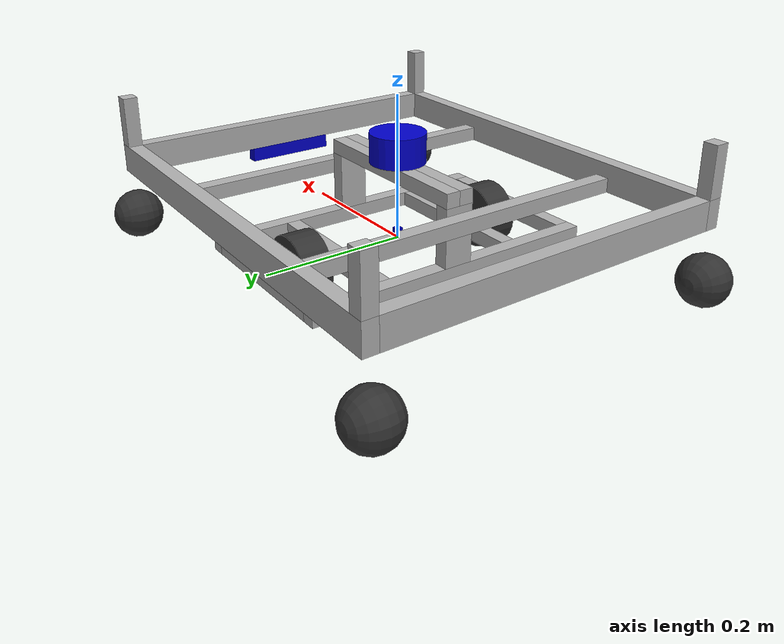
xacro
<?xml version="1.0"?>
<robot name="agv" xmlns:xacro="http://ros.org/wiki/xacro">

  <xacro:include filename="driver_assembly.xacro" />
  <xacro:include filename="carrier_assembly.xacro" />
  <xacro:include filename="wheel.xacro" />
  <xacro:include filename="caster.xacro" />

  <xacro:include filename="sensors/kinect.xacro" />
  <xacro:include filename="sensors/imu_sensor.xacro" />
  <xacro:include filename="sensors/lidar.xacro" />

  <material name="Black">
    <color rgba="0.2 0.2 0.2 1.0" />
  </material>
  <material name="Red">
    <color rgba="0.8 0.0 0.0 1.0" />
  </material>
  <material name="White">
    <color rgba="1.0 1.0 1.0 1.0" />
  </material>
  <material name="Gray">
    <color rgba="0.7 0.7 0.7 1.0" />
  </material>
  <material name="Blue">
    <color rgba="0.0 0.0 0.8 1.0" />
  </material>

  <!-- Properties -->
  <xacro:property name="wheel_yoff" value="0.15" />
  <xacro:property name="carrier_zoff" value="0.08" />

  <!-- Base Link -->
  <link name="base_link">
    <visual>
      <geometry>
        <box size="0.001 0.001 0.001" />
      </geometry>
      <material name="White" />
    </visual>
  </link>

  <!-- Robot Footprint -->
  <link name="base_footprint" />
  <joint name="base_joint" type="fixed">
    <parent link="base_link" />
    <child link="base_footprint" />
    <origin xyz="0.0 0.0 0" rpy="0 0 0" />
  </joint>

  <!-- Driver Assembly -->
  <xacro:driver_assembly />
  <joint name="driver_base_joint" type="fixed">
    <parent link="base_link" />
    <child link="driver_base" />
    <origin xyz="0 0 0" rpy="0 0 ${pi/2}" />
  </joint>

  <!-- Carrier Assembly -->
  <xacro:carrier_assembly />
  <joint name="carrier_base_joint" type="fixed">
    <parent link="base_link" />
    <child link="carrier_base" />
    <origin xyz="0 0 ${carrier_zoff}" rpy="0 0 0" />
  </joint>

  <!-- Wheels -->
  <xacro:wheel prefix="lwheel" yoff="${wheel_yoff}" />
  <xacro:wheel prefix="rwheel" yoff="${-wheel_yoff}" />

  <!-- Casters -->
  <!-- Carrier base as parent -->
  <xacro:caster parent="carrier_base" prefix="lfcaster" ztotal="${wheel_radius+carrier_zoff}" x="0.31" y="0.25" z="0.04" />
  <xacro:caster parent="carrier_base" prefix="rfcaster" ztotal="${wheel_radius+carrier_zoff}" x="0.31" y="-0.25" z="0.04" />
  <xacro:caster parent="carrier_base" prefix="lbcaster" ztotal="${wheel_radius+carrier_zoff}" x="-0.31" y="0.25" z="0.04" />
  <xacro:caster parent="carrier_base" prefix="rbcaster" ztotal="${wheel_radius+carrier_zoff}" x="-0.31" y="-0.25" z="0.04" />

  <!-- Sensors -->
  <xacro:kinect x="0.31" y="0" z="${carrier_zoff-0.02}" r="0" />
  <xacro:imu_sensor />
  <xacro:lidar x="0" y="0" z="0.11" r="0" />

  <gazebo>
    <plugin name='diff_drive' filename='libgazebo_ros_diff_drive.so'>
      <ros>
        <namespace>/</namespace>
      </ros>

      <!-- wheels -->
      <left_joint>lwheel_joint</left_joint>
      <right_joint>rwheel_joint</right_joint>

      <!-- kinematics -->
      <wheel_separation>${2*wheel_yoff}</wheel_separation>
      <wheel_diameter>${2*wheel_radius}</wheel_diameter>

      <!-- limits -->
      <max_wheel_torque>20</max_wheel_torque>
      <max_wheel_acceleration>1.0</max_wheel_acceleration>

      <!-- output -->
      <publish_odom>true</publish_odom>
      <publish_odom_tf>true</publish_odom_tf>
      <publish_wheel_tf>true</publish_wheel_tf>

      <odometry_frame>odom</odometry_frame>
      <robot_base_frame>base_link</robot_base_frame>
    </plugin>
  </gazebo>

</robot>

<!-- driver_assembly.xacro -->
<robot name="driver_assembly" xmlns:xacro="http://ros.org/wiki/xacro">

  <xacro:include filename="beam.xacro" />

  <xacro:macro name="driver_assembly">

    <link name="driver_base">
      <visual>
        <origin xyz="0 0 0" rpy="0 0 0" />
        <geometry>
          <box size="0.001 0.001 0.001" />
        </geometry>
      </visual>
      <inertial>
        <mass value="0.0001" />
        <origin xyz="0 0 0" />
        <inertia ixx="0.0001" ixy="0.0" ixz="0.0" iyy="0.0001" iyz="0.0" izz="0.0001" />
      </inertial>
    </link>

    <xacro:beam prefix="d1" parent="driver_base" length="0.22" height="0.02" x="-0.1" y="0" z="0" r="1" />
    <xacro:beam prefix="d2" parent="driver_base" length="0.22" height="0.02" x="0.1" y="0" z="0" r="1" />
    <xacro:beam prefix="d3" parent="driver_base" length="0.22" height="0.02" x="-0.2" y="0" z="0" r="1" />
    <xacro:beam prefix="d4" parent="driver_base" length="0.22" height="0.02" x="0.2" y="0" z="0" r="1" />

    <xacro:beam prefix="d5" parent="driver_base" length="0.42" height="0.02" x="0" y="-0.12" z="0" r="0" />
    <xacro:beam prefix="d6" parent="driver_base" length="0.42" height="0.02" x="0" y="0.12" z="0" r="0" />

    <xacro:beam prefix="d7" parent="driver_base" length="0.04" height="0.08" x="0" y="-0.12" z="0.05" r="0" col="0" />
    <xacro:beam prefix="d8" parent="driver_base" length="0.04" height="0.08" x="0" y="0.12" z="0.05" r="0" col="0" />

    <xacro:beam prefix="d9" parent="driver_base" length="0.26" height="0.02" x="0.01" y="0" z="0.1" r="1" col="0" />
    <xacro:beam prefix="d10" parent="driver_base" length="0.26" height="0.02" x="-0.01" y="0" z="0.1" r="1" col="0" />

  </xacro:macro>

</robot>

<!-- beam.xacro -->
<robot name="beam" xmlns:xacro="http://ros.org/wiki/xacro">

    <xacro:macro name="box_inertia" params="m w h d">
        <inertial>
            <origin xyz="0 0 0" rpy="${pi/2} 0 ${pi/2}" />
            <mass value="${m}" />
            <inertia ixx="${(m/12) * (h*h + d*d)}" ixy="0.0" ixz="0.0" iyy="${(m/12) * (w*w + d*d)}" iyz="0.0" izz="${(m/12) * (w*w + h*h)}" />
        </inertial>
    </xacro:macro>

    <xacro:macro name="beam" params="prefix parent length height x y z r col:=1">
        <link name="${prefix}_beam">
            <visual>
                <origin xyz="0 0 0" rpy="0 0 ${r*pi/2}" />
                <geometry>
                    <box size="${length} 0.02 ${height}" />
                </geometry>
                <material name="Gray" />
            </visual>

            <xacro:if value="${col == 1}">
                <collision>
                    <origin xyz="0 0 0" rpy="0 0 ${r*pi/2}" />
                    <geometry>
                        <box size="${length} 0.02 ${height}" />
                    </geometry>
                </collision>
            </xacro:if>

            <xacro:box_inertia m="${0.43125*length*(height/0.02)}" w="0.02" d="${length}" h="${height}" />
        </link>

        <joint name="${prefix}_beam_joint" type="fixed">
            <parent link="${parent}" />
            <child link="${prefix}_beam" />
            <origin xyz="${x} ${y} ${z}" rpy="0 0 0" />
        </joint>
    </xacro:macro>

</robot>

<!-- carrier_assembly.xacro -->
<robot name="carrier_assembly" xmlns:xacro="http://ros.org/wiki/xacro">

  <xacro:include filename="beam.xacro" />

  <xacro:macro name="carrier_assembly">

    <link name="carrier_base">
      <visual>
        <origin xyz="0 0 0" rpy="0 0 0" />
        <geometry>
          <box size="0.001 0.001 0.001" />
        </geometry>
      </visual>
      <inertial>
        <mass value="0.0001" />
        <origin xyz="0 0 0" />
        <inertia ixx="0.0001" ixy="0.0" ixz="0.0" iyy="0.0001" iyz="0.0" izz="0.0001" />
      </inertial>
    </link>

    <xacro:beam prefix="c1" parent="carrier_base" length="0.48" height="0.02" x="-0.14" y="0" z="-0.01" r="1" />
    <xacro:beam prefix="c2" parent="carrier_base" length="0.48" height="0.02" x="0.14" y="0" z="-0.01" r="1" />

    <xacro:beam prefix="c3" parent="carrier_base" length="0.48" height="0.04" x="-0.3" y="0" z="0" r="1" />
    <xacro:beam prefix="c4" parent="carrier_base" length="0.48" height="0.04" x="0.3" y="0" z="0" r="1" />
    <xacro:beam prefix="c5" parent="carrier_base" length="0.62" height="0.04" x="0" y="-0.25" z="0" r="0" />
    <xacro:beam prefix="c6" parent="carrier_base" length="0.62" height="0.04" x="0" y="0.25" z="0" r="0" />

    <xacro:beam prefix="c7" parent="carrier_base" length="0.02" height="0.07" x="0.3" y="-0.25" z="0.055" r="0" />
    <xacro:beam prefix="c8" parent="carrier_base" length="0.02" height="0.07" x="0.3" y="0.25" z="0.055" r="0" />
    <xacro:beam prefix="c9" parent="carrier_base" length="0.02" height="0.07" x="-0.3" y="-0.25" z="0.055" r="0" />
    <xacro:beam prefix="c10" parent="carrier_base" length="0.02" height="0.07" x="-0.3" y="0.25" z="0.055" r="0" />

  </xacro:macro>

</robot>

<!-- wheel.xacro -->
<robot name="wheel"
  xmlns:xacro="http://www.ros.org/wiki/xacro">

  <xacro:property name="wheel_radius" value="0.045" />
  <xacro:property name="wheel_width" value="0.04" />

  <xacro:macro name="cylinder_inertia" params="m r h">
    <inertial>
      <origin xyz="0 0 0" rpy="${pi/2} 0 0" />
      <mass value="${m}" />
      <inertia ixx="${(m/12) * (3*r*r + h*h)}" ixy="0" ixz="0" iyy="${(m/12) * (3*r*r + h*h)}" iyz="0" izz="${(m/2) * (r*r)}" />
    </inertial>
  </xacro:macro>

  <xacro:macro name="wheel" params="prefix yoff">
    <link name="${prefix}_link">
      <visual>
        <origin xyz="0 0 0" rpy="${pi/2} 0 0" />
        <geometry>
          <cylinder radius="${wheel_radius}" length="${wheel_width}" />
        </geometry>
        <material name="Black"/>
      </visual>

      <collision>
        <origin xyz="0 0 0" rpy="${pi/2} 0 0" />
        <geometry>
          <cylinder radius="${wheel_radius}" length="${wheel_width}" />
        </geometry>
      </collision>

      <xacro:cylinder_inertia m="0.5" r="${wheel_radius}" h="${wheel_width}" />
    </link>

    <joint name="${prefix}_joint" type="continuous">
      <parent link="base_link" />
      <child link="${prefix}_link" />
      <axis rpy="0 0 0" xyz="0 1 0"/>
      <origin xyz="0 ${yoff} 0" rpy="0 0 0" />
    </joint>
  </xacro:macro>
</robot>

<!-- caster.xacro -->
<robot name="caster"
  xmlns:xacro="http://ros.org/wiki/xacro">

  <xacro:property name="caster_radius" value="0.035" />
  <xacro:property name="caster_width" value="0.02" />

  <xacro:macro name="cylinder_inertia" params="m r h">
    <inertial>
      <origin xyz="0 0 0" rpy="${pi/2} 0 0" />
      <mass value="${m}" />
      <inertia ixx="${(m/12) * (3*r*r + h*h)}" ixy="0" ixz="0" iyy="${(m/12) * (3*r*r + h*h)}" iyz="0" izz="${(m/2) * (r*r)}" />
    </inertial>
  </xacro:macro>

  <xacro:macro name="sphere_inertia" params="m r">
    <inertial>
      <mass value="${m}"/>
      <inertia ixx="${(2/5) * m * (r*r)}" ixy="0.0" ixz="0.0" iyy="${(2/5) * m * (r*r)}" iyz="0.0" izz="${(2/5) * m * (r*r)}"/>
    </inertial>
  </xacro:macro>

  <xacro:macro name="caster" params="parent prefix ztotal x y z">
    <link name="${prefix}_link">
      <visual>
        <origin xyz="0 0 0" rpy="${pi/2} 0 0" />
        <geometry>
          <sphere radius="${caster_radius}" />
        </geometry>
        <material name="Black"/>
      </visual>

      <collision>
        <origin xyz="0 0 0" rpy="${pi/2} 0 0" />
        <geometry>
          <cylinder radius="${caster_radius}" length="${caster_width}" />
        </geometry>
      </collision>

      <xacro:sphere_inertia m="0.5" r="${caster_radius}"/>
    </link>

    <joint name="${prefix}_joint" type="fixed">
      <parent link="${parent}" />
      <child link="${prefix}_link" />
      <origin xyz="${x} ${y} ${-(ztotal-caster_radius)+0.001}" rpy="0 0 0" />
      <axis xyz="0 1 0" />
    </joint>
  </xacro:macro>

</robot>

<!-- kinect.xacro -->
<robot name="kinect" xmlns:xacro="http://ros.org/wiki/xacro">

    <xacro:property name="kinect_height" value="0.022" />
    <xacro:property name="kinect_length" value="0.015" />
    <xacro:property name="kinect_width" value="0.130" />

    <xacro:macro name="kinect" params="x y z r">
        <link name="camera_link">
            <visual>
                <origin xyz="0 0 0" rpy="0 0 ${r*pi/2}" />
                <geometry>
                    <box size="${kinect_length} ${kinect_width} ${kinect_height}" />
                </geometry>
                <material name="Blue"/>
            </visual>
        </link>

        <joint name="camera_joint" type="fixed">
            <parent link="base_link" />
            <child link="camera_link" />
            <origin xyz="${x-kinect_length/2} ${y} ${z-kinect_height/2}" rpy="0 0 0" />
        </joint>

        <link name="camera_depth_frame" />

        <joint name="camera_depth_joint" type="fixed">
            <origin xyz="0 0 0" rpy="${-pi/2} 0 ${-pi}" />
            <parent link="camera_link" />
            <child link="camera_depth_frame" />
        </joint>

        <gazebo reference="camera_link">
            <sensor name="kinect" type="depth">
                <visualize>true</visualize>
                <update_rate>30.0</update_rate>
                <camera name="camera">
                    <horizontal_fov>1.047198</horizontal_fov>
                    <image>
                        <width>640</width>
                        <height>480</height>
                        <format>R8G8B8</format>
                    </image>
                    <clip>
                        <near>0.08</near>
                        <far>10</far>
                    </clip>
                </camera>
                <plugin name="depth_camera_controller" filename="libgazebo_ros_camera.so">
                    <baseline>0.2</baseline>
                    <alwaysOn>true</alwaysOn>
                    <updateRate>0.0</updateRate>
                    <frameName>kinect_depth</frameName>
                    <pointCloudCutoff>0.8</pointCloudCutoff>
                    <pointCloudCutoffMax>6.0</pointCloudCutoffMax>
                    <distortionK1>0</distortionK1>
                    <distortionK2>0</distortionK2>
                    <distortionK3>0</distortionK3>
                    <distortionT1>0</distortionT1>
                    <distortionT2>0</distortionT2>
                    <CxPrime>0</CxPrime>
                    <Cx>0</Cx>
                    <Cy>0</Cy>
                    <focalLength>0</focalLength>
                    <hackBaseline>0</hackBaseline>
                </plugin>
            </sensor>
        </gazebo>
    </xacro:macro>
</robot>

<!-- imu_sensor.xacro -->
<robot name="imu_sensor" xmlns:xacro="http://ros.org/wiki/xacro">
    <xacro:macro name="imu_sensor">
        <link name="imu_link">
            <visual>
                <geometry>
                    <box size="0.01 0.01 0.01" />
                </geometry>
                <material name="Blue"/>
            </visual>

            <collision>
                <geometry>
                    <box size="0.01 0.01 0.01" />
                </geometry>
            </collision>

            <xacro:box_inertia m="0.01" w="0.01" d="0.01" h="0.01" />
        </link>

        <joint name="imu_joint" type="fixed">
            <parent link="base_link" />
            <child link="imu_link" />
            <origin xyz="0 0 0.01" />
        </joint>

        <gazebo reference="imu_link">
            <sensor name="imu_sensor" type="imu">
                <plugin filename="libgazebo_ros_imu_sensor.so" name="imu_plugin">
                    <ros>
                        <namespace>/demo</namespace>
                        <remapping>~/out:=imu</remapping>
                    </ros>
                    <initial_orientation_as_reference>false</initial_orientation_as_reference>
                </plugin>
                <always_on>true</always_on>
                <update_rate>100</update_rate>
                <visualize>true</visualize>
                <imu>
                    <angular_velocity>
                        <x>
                            <noise type="gaussian">
                                <mean>0.0</mean>
                                <stddev>2e-4</stddev>
                                <bias_mean>0.0000075</bias_mean>
                                <bias_stddev>0.0000008</bias_stddev>
                            </noise>
                        </x>
                        <y>
                            <noise type="gaussian">
                                <mean>0.0</mean>
                                <stddev>2e-4</stddev>
                                <bias_mean>0.0000075</bias_mean>
                                <bias_stddev>0.0000008</bias_stddev>
                            </noise>
                        </y>
                        <z>
                            <noise type="gaussian">
                                <mean>0.0</mean>
                                <stddev>2e-4</stddev>
                                <bias_mean>0.0000075</bias_mean>
                                <bias_stddev>0.0000008</bias_stddev>
                            </noise>
                        </z>
                    </angular_velocity>
                    <linear_acceleration>
                        <x>
                            <noise type="gaussian">
                                <mean>0.0</mean>
                                <stddev>1.7e-2</stddev>
                                <bias_mean>0.1</bias_mean>
                                <bias_stddev>0.001</bias_stddev>
                            </noise>
                        </x>
                        <y>
                            <noise type="gaussian">
                                <mean>0.0</mean>
                                <stddev>1.7e-2</stddev>
                                <bias_mean>0.1</bias_mean>
                                <bias_stddev>0.001</bias_stddev>
                            </noise>
                        </y>
                        <z>
                            <noise type="gaussian">
                                <mean>0.0</mean>
                                <stddev>1.7e-2</stddev>
                                <bias_mean>0.1</bias_mean>
                                <bias_stddev>0.001</bias_stddev>
                            </noise>
                        </z>
                    </linear_acceleration>
                </imu>
            </sensor>
        </gazebo>
    </xacro:macro>
</robot>

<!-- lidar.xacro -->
<robot name="lidar" xmlns:xacro="http://ros.org/wiki/xacro">

  <xacro:property name="lidar_height" value="0.041" />
  <xacro:property name="lidar_radius" value="0.038" />

  <xacro:macro name="lidar" params="x y z r">
    <link name="lidar_link">
      <visual>
        <origin xyz="0 0 0" rpy="0 0 ${r*pi/2}" />
        <geometry>
          <cylinder radius="${lidar_radius}" length="${lidar_height}" />
        </geometry>
        <material name="Blue" />
      </visual>

      <collision>
        <origin xyz="0 0 0" rpy="0 0 0" />
        <geometry>
          <cylinder radius="${lidar_radius}" length="${lidar_height}" />
        </geometry>
      </collision>

      <inertial>
        <origin xyz="0 0 0" rpy="0 0 0" />
        <mass value="0.125" />
        <inertia ixx="0.001" ixy="0" ixz="0" iyy="0.001" iyz="0" izz="0.001" />
      </inertial>
    </link>

    <joint name="lidar_joint" type="fixed">
      <parent link="base_link" />
      <child link="lidar_link" />
      <origin xyz="${x} ${y} ${z+lidar_height/2}" rpy="0 0 0" />
    </joint>

    <gazebo reference="lidar_link">
      <sensor name="lidar" type="ray">
        <always_on>true</always_on>
        <visualize>true</visualize>
        <update_rate>5</update_rate>
        <ray>
          <scan>
            <horizontal>
              <samples>360</samples>
              <resolution>1.000000</resolution>
              <min_angle>0.000000</min_angle>
              <max_angle>6.280000</max_angle>
            </horizontal>
          </scan>
          <range>
            <min>0.120000</min>
            <max>3.5</max>
            <resolution>0.015000</resolution>
          </range>
          <noise>
            <type>gaussian</type>
            <mean>0.0</mean>
            <stddev>0.01</stddev>
          </noise>
        </ray>
        <plugin name="scan" filename="libgazebo_ros_ray_sensor.so">
          <ros>
            <remapping>~/out:=scan</remapping>
          </ros>
          <output_type>sensor_msgs/LaserScan</output_type>
          <frame_name>lidar_link</frame_name>
        </plugin>
      </sensor>
    </gazebo>
  </xacro:macro>
</robot>
